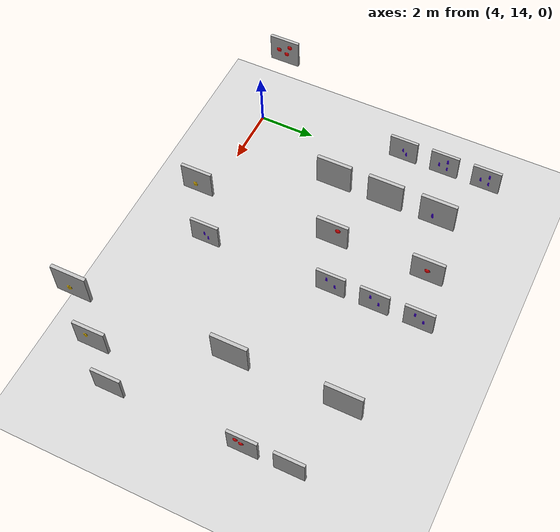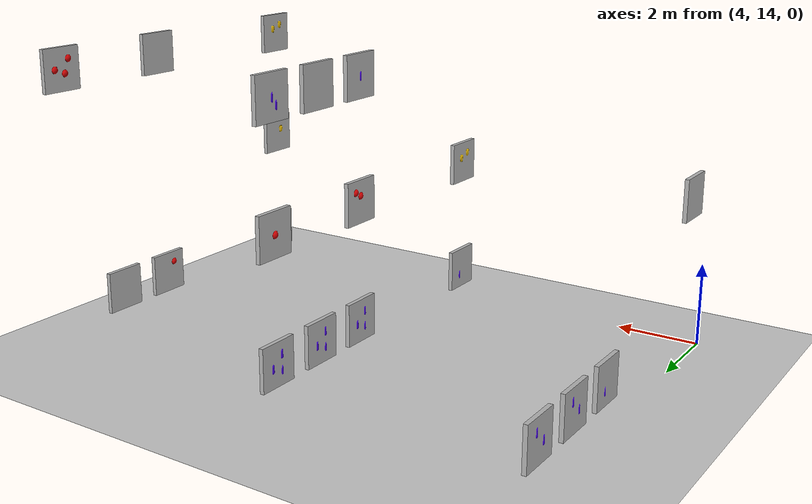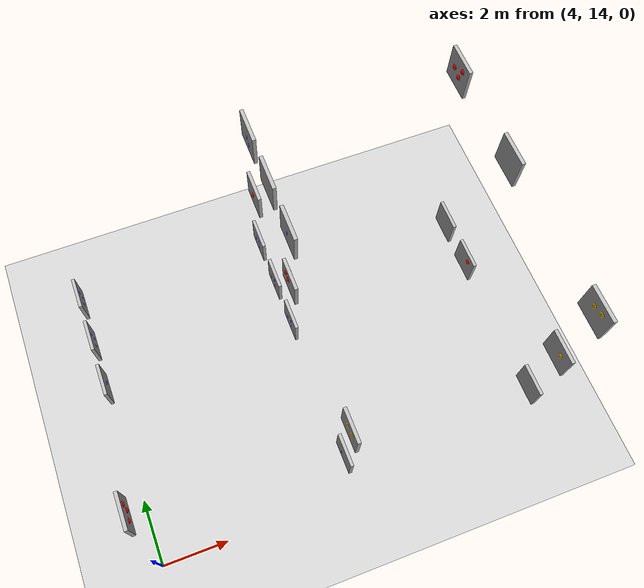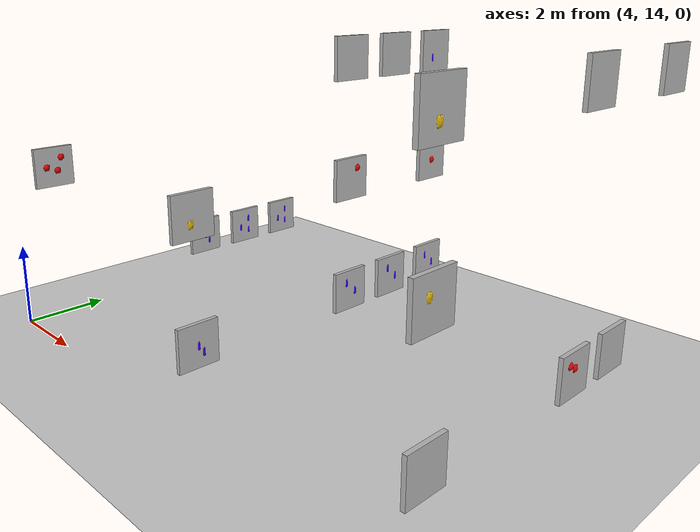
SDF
<sdf version="1.7">
 <world name="default">
  <model name="ground_plane">
   <static>1</static>
   <link name="link">
    <collision name="collision">
     <geometry><plane><normal>0 0 1</normal><size>100 100</size></plane></geometry>
     <surface>
      <contact><collide_bitmask>65535</collide_bitmask></contact>
      <friction><ode><mu>100</mu><mu2>50</mu2></ode></friction>
     </surface>
    </collision>
    <visual name="visual">
     <cast_shadows>0</cast_shadows>
     <geometry><plane><normal>0 0 1</normal><size>100 100</size></plane></geometry>
     <material>
      <script><uri>file://media/materials/scripts/gazebo.material</uri><name>Gazebo/Grey</name></script>
     </material>
    </visual>
   </link>
  </model>
  <model name="plant4">
   <link name="tomato_3">
    <inertial>
     <mass>1</mass>
     <inertia><ixx>10</ixx><ixy>0</ixy><ixz>0</ixz><iyy>10</iyy><iyz>0</iyz><izz>10</izz></inertia>
    </inertial>
    <collision name="tomato_3_collision">
     <geometry>
      <mesh><scale>1 1 1</scale><uri>/root/sim_ws/src/icuas24_competition/models/tomato_3/tomato_3.dae</uri></mesh>
     </geometry>
    </collision>
    <visual name="tomato_3_visual">
     <geometry>
      <mesh><scale>1 1 1</scale><uri>/root/sim_ws/src/icuas24_competition/models/tomato_3/tomato_3.dae</uri></mesh>
     </geometry>
    </visual>
   </link>
   <static>1</static>
   <pose>4 15 3.9 0 0 -1.5707</pose>
  </model>
  <model name="plant5">
   <link name="eggplant_4">
    <inertial>
     <mass>1</mass>
     <inertia><ixx>10</ixx><ixy>0</ixy><ixz>0</ixz><iyy>10</iyy><iyz>0</iyz><izz>10</izz></inertia>
    </inertial>
    <collision name="eggplant_4_collision">
     <geometry>
      <mesh>
       <scale>1 1 1</scale>
       <uri>/root/sim_ws/src/icuas24_competition/models/eggplant_4/eggplant_4.dae</uri>
      </mesh>
     </geometry>
    </collision>
    <visual name="eggplant_4_visual">
     <geometry>
      <mesh>
       <scale>1 1 1</scale>
       <uri>/root/sim_ws/src/icuas24_competition/models/eggplant_4/eggplant_4.dae</uri>
      </mesh>
     </geometry>
    </visual>
   </link>
   <static>1</static>
   <pose>10 21 1.1 0 -0 1.5707</pose>
  </model>
  <model name="plant6">
   <link name="eggplant_4">
    <inertial>
     <mass>1</mass>
     <inertia><ixx>10</ixx><ixy>0</ixy><ixz>0</ixz><iyy>10</iyy><iyz>0</iyz><izz>10</izz></inertia>
    </inertial>
    <collision name="eggplant_4_collision">
     <geometry>
      <mesh>
       <scale>1 1 1</scale>
       <uri>/root/sim_ws/src/icuas24_competition/models/eggplant_4/eggplant_4.dae</uri>
      </mesh>
     </geometry>
    </collision>
    <visual name="eggplant_4_visual">
     <geometry>
      <mesh>
       <scale>1 1 1</scale>
       <uri>/root/sim_ws/src/icuas24_competition/models/eggplant_4/eggplant_4.dae</uri>
      </mesh>
     </geometry>
    </visual>
   </link>
   <static>1</static>
   <pose>10 22.5 1.1 0 -0 1.5707</pose>
  </model>
  <model name="plant7">
   <link name="eggplant_4">
    <inertial>
     <mass>1</mass>
     <inertia><ixx>10</ixx><ixy>0</ixy><ixz>0</ixz><iyy>10</iyy><iyz>0</iyz><izz>10</izz></inertia>
    </inertial>
    <collision name="eggplant_4_collision">
     <geometry>
      <mesh>
       <scale>1 1 1</scale>
       <uri>/root/sim_ws/src/icuas24_competition/models/eggplant_4/eggplant_4.dae</uri>
      </mesh>
     </geometry>
    </collision>
    <visual name="eggplant_4_visual">
     <geometry>
      <mesh>
       <scale>1 1 1</scale>
       <uri>/root/sim_ws/src/icuas24_competition/models/eggplant_4/eggplant_4.dae</uri>
      </mesh>
     </geometry>
    </visual>
   </link>
   <static>1</static>
   <pose>10 19.5 1.1 0 -0 1.5707</pose>
  </model>
  <model name="plant8">
   <link name="tomato_1">
    <inertial>
     <mass>1</mass>
     <inertia><ixx>10</ixx><ixy>0</ixy><ixz>0</ixz><iyy>10</iyy><iyz>0</iyz><izz>10</izz></inertia>
    </inertial>
    <collision name="tomato_1_collision">
     <geometry>
      <mesh><scale>1 1 1</scale><uri>/root/sim_ws/src/icuas24_competition/models/tomato_1/tomato_1.dae</uri></mesh>
     </geometry>
    </collision>
    <visual name="tomato_1_visual">
     <geometry>
      <mesh><scale>1 1 1</scale><uri>/root/sim_ws/src/icuas24_competition/models/tomato_1/tomato_1.dae</uri></mesh>
     </geometry>
    </visual>
   </link>
   <static>1</static>
   <pose>10 22.5 3.9 0 0 -1.5707</pose>
  </model>
  <model name="plant9">
   <link name="tomato_2">
    <inertial>
     <mass>1</mass>
     <inertia><ixx>10</ixx><ixy>0</ixy><ixz>0</ixz><iyy>10</iyy><iyz>0</iyz><izz>10</izz></inertia>
    </inertial>
    <collision name="tomato_2_collision">
     <geometry>
      <mesh><scale>1 1 1</scale><uri>/root/sim_ws/src/icuas24_competition/models/tomato_2/tomato_2.dae</uri></mesh>
     </geometry>
    </collision>
    <visual name="tomato_2_visual">
     <geometry>
      <mesh><scale>1 1 1</scale><uri>/root/sim_ws/src/icuas24_competition/models/tomato_2/tomato_2.dae</uri></mesh>
     </geometry>
    </visual>
   </link>
   <static>1</static>
   <pose>10 19.5 3.9 0 -0 1.5707</pose>
  </model>
  <model name="plant12">
   <link name="plant">
    <inertial>
     <mass>1</mass>
     <inertia><ixx>10</ixx><ixy>0</ixy><ixz>0</ixz><iyy>10</iyy><iyz>0</iyz><izz>10</izz></inertia>
    </inertial>
    <collision name="plant_collision">
     <geometry>
      <mesh><scale>1 1 1</scale><uri>/root/sim_ws/src/icuas24_competition/models/plant/plant_base.dae</uri></mesh>
     </geometry>
    </collision>
    <visual name="plant_visual">
     <geometry>
      <mesh><scale>1 1 1</scale><uri>/root/sim_ws/src/icuas24_competition/models/plant/plant_base.dae</uri></mesh>
     </geometry>
    </visual>
   </link>
   <static>1</static>
   <pose>16 15 1.1 0 -0 1.5707</pose>
  </model>
  <model name="plant13">
   <link name="plant">
    <inertial>
     <mass>1</mass>
     <inertia><ixx>10</ixx><ixy>0</ixy><ixz>0</ixz><iyy>10</iyy><iyz>0</iyz><izz>10</izz></inertia>
    </inertial>
    <collision name="plant_collision">
     <geometry>
      <mesh><scale>1 1 1</scale><uri>/root/sim_ws/src/icuas24_competition/models/plant/plant_base.dae</uri></mesh>
     </geometry>
    </collision>
    <visual name="plant_visual">
     <geometry>
      <mesh><scale>1 1 1</scale><uri>/root/sim_ws/src/icuas24_competition/models/plant/plant_base.dae</uri></mesh>
     </geometry>
    </visual>
   </link>
   <static>1</static>
   <pose>16 21 1.1 0 -0 1.5707</pose>
  </model>
  <model name="plant14">
   <link name="tomato_2">
    <inertial>
     <mass>1</mass>
     <inertia><ixx>10</ixx><ixy>0</ixy><ixz>0</ixz><iyy>10</iyy><iyz>0</iyz><izz>10</izz></inertia>
    </inertial>
    <collision name="tomato_2_collision">
     <geometry>
      <mesh><scale>1 1 1</scale><uri>/root/sim_ws/src/icuas24_competition/models/tomato_2/tomato_2.dae</uri></mesh>
     </geometry>
    </collision>
    <visual name="tomato_2_visual">
     <geometry>
      <mesh><scale>1 1 1</scale><uri>/root/sim_ws/src/icuas24_competition/models/tomato_2/tomato_2.dae</uri></mesh>
     </geometry>
    </visual>
   </link>
   <static>1</static>
   <pose>16 19.5 1.1 0 0 -1.5707</pose>
  </model>
  <model name="plant15">
   <link name="plant">
    <inertial>
     <mass>1</mass>
     <inertia><ixx>10</ixx><ixy>0</ixy><ixz>0</ixz><iyy>10</iyy><iyz>0</iyz><izz>10</izz></inertia>
    </inertial>
    <collision name="plant_collision">
     <geometry>
      <mesh><scale>1 1 1</scale><uri>/root/sim_ws/src/icuas24_competition/models/plant/plant_base.dae</uri></mesh>
     </geometry>
    </collision>
    <visual name="plant_visual">
     <geometry>
      <mesh><scale>1 1 1</scale><uri>/root/sim_ws/src/icuas24_competition/models/plant/plant_base.dae</uri></mesh>
     </geometry>
    </visual>
   </link>
   <static>1</static>
   <pose>16 19.5 6.7 0 0 -1.5707</pose>
  </model>
  <model name="plant16">
   <link name="tomato_3">
    <inertial>
     <mass>1</mass>
     <inertia><ixx>10</ixx><ixy>0</ixy><ixz>0</ixz><iyy>10</iyy><iyz>0</iyz><izz>10</izz></inertia>
    </inertial>
    <collision name="tomato_3_collision">
     <geometry>
      <mesh><scale>1 1 1</scale><uri>/root/sim_ws/src/icuas24_competition/models/tomato_3/tomato_3.dae</uri></mesh>
     </geometry>
    </collision>
    <visual name="tomato_3_visual">
     <geometry>
      <mesh><scale>1 1 1</scale><uri>/root/sim_ws/src/icuas24_competition/models/tomato_3/tomato_3.dae</uri></mesh>
     </geometry>
    </visual>
   </link>
   <static>1</static>
   <pose>16 22.5 6.7 0 -0 1.5707</pose>
  </model>
  <model name="plant19">
   <link name="pepper_3">
    <inertial>
     <mass>1</mass>
     <inertia><ixx>10</ixx><ixy>0</ixy><ixz>0</ixz><iyy>10</iyy><iyz>0</iyz><izz>10</izz></inertia>
    </inertial>
    <collision name="pepper_3_collision">
     <geometry>
      <mesh><scale>1 1 1</scale><uri>/root/sim_ws/src/icuas24_competition/models/pepper_3/pepper_3.dae</uri></mesh>
     </geometry>
    </collision>
    <visual name="pepper_3_visual">
     <geometry>
      <mesh><scale>1 1 1</scale><uri>/root/sim_ws/src/icuas24_competition/models/pepper_3/pepper_3.dae</uri></mesh>
     </geometry>
    </visual>
   </link>
   <static>1</static>
   <pose>10 15 3.9 0 -0 1.5707</pose>
  </model>
  <model name="plant24">
   <link name="pepper_1">
    <inertial>
     <mass>1</mass>
     <inertia><ixx>10</ixx><ixy>0</ixy><ixz>0</ixz><iyy>10</iyy><iyz>0</iyz><izz>10</izz></inertia>
    </inertial>
    <collision name="pepper_1_collision">
     <geometry>
      <mesh><scale>1 1 1</scale><uri>/root/sim_ws/src/icuas24_competition/models/pepper_1/pepper_1.dae</uri></mesh>
     </geometry>
    </collision>
    <visual name="pepper_1_visual">
     <geometry>
      <mesh><scale>1 1 1</scale><uri>/root/sim_ws/src/icuas24_competition/models/pepper_1/pepper_1.dae</uri></mesh>
     </geometry>
    </visual>
   </link>
   <static>1</static>
   <pose>16 15 3.9 0 0 -1.5707</pose>
  </model>
  <model name="plant27">
   <link name="pepper_3">
    <inertial>
     <mass>1</mass>
     <inertia><ixx>10</ixx><ixy>0</ixy><ixz>0</ixz><iyy>10</iyy><iyz>0</iyz><izz>10</izz></inertia>
    </inertial>
    <collision name="pepper_3_collision">
     <geometry>
      <mesh><scale>1 1 1</scale><uri>/root/sim_ws/src/icuas24_competition/models/pepper_3/pepper_3.dae</uri></mesh>
     </geometry>
    </collision>
    <visual name="pepper_3_visual">
     <geometry>
      <mesh><scale>1 1 1</scale><uri>/root/sim_ws/src/icuas24_competition/models/pepper_3/pepper_3.dae</uri></mesh>
     </geometry>
    </visual>
   </link>
   <static>1</static>
   <pose>16 15 6.7 0 -0 1.5707</pose>
  </model>
  <model name="plant29">
   <link name="eggplant_2">
    <inertial>
     <mass>1</mass>
     <inertia><ixx>10</ixx><ixy>0</ixy><ixz>0</ixz><iyy>10</iyy><iyz>0</iyz><izz>10</izz></inertia>
    </inertial>
    <collision name="eggplant_2_collision">
     <geometry>
      <mesh>
       <scale>1 1 1</scale>
       <uri>/root/sim_ws/src/icuas24_competition/models/eggplant_2/eggplant_2.dae</uri>
      </mesh>
     </geometry>
    </collision>
    <visual name="eggplant_2_visual">
     <geometry>
      <mesh>
       <scale>1 1 1</scale>
       <uri>/root/sim_ws/src/icuas24_competition/models/eggplant_2/eggplant_2.dae</uri>
      </mesh>
     </geometry>
    </visual>
   </link>
   <static>1</static>
   <pose>4 19.5 1.1 0 0 -1.5707</pose>
  </model>
  <model name="plant30">
   <link name="eggplant_4">
    <inertial>
     <mass>1</mass>
     <inertia><ixx>10</ixx><ixy>0</ixy><ixz>0</ixz><iyy>10</iyy><iyz>0</iyz><izz>10</izz></inertia>
    </inertial>
    <collision name="eggplant_4_collision">
     <geometry>
      <mesh>
       <scale>1 1 1</scale>
       <uri>/root/sim_ws/src/icuas24_competition/models/eggplant_4/eggplant_4.dae</uri>
      </mesh>
     </geometry>
    </collision>
    <visual name="eggplant_4_visual">
     <geometry>
      <mesh>
       <scale>1 1 1</scale>
       <uri>/root/sim_ws/src/icuas24_competition/models/eggplant_4/eggplant_4.dae</uri>
      </mesh>
     </geometry>
    </visual>
   </link>
   <static>1</static>
   <pose>4 22.5 1.1 0 0 -1.5707</pose>
  </model>
  <model name="plant31">
   <link name="eggplant_4">
    <inertial>
     <mass>1</mass>
     <inertia><ixx>10</ixx><ixy>0</ixy><ixz>0</ixz><iyy>10</iyy><iyz>0</iyz><izz>10</izz></inertia>
    </inertial>
    <collision name="eggplant_4_collision">
     <geometry>
      <mesh>
       <scale>1 1 1</scale>
       <uri>/root/sim_ws/src/icuas24_competition/models/eggplant_4/eggplant_4.dae</uri>
      </mesh>
     </geometry>
    </collision>
    <visual name="eggplant_4_visual">
     <geometry>
      <mesh>
       <scale>1 1 1</scale>
       <uri>/root/sim_ws/src/icuas24_competition/models/eggplant_4/eggplant_4.dae</uri>
      </mesh>
     </geometry>
    </visual>
   </link>
   <static>1</static>
   <pose>4 21 1.1 0 0 -1.5707</pose>
  </model>
  <model name="plant34">
   <link name="eggplant_2">
    <inertial>
     <mass>1</mass>
     <inertia><ixx>10</ixx><ixy>0</ixy><ixz>0</ixz><iyy>10</iyy><iyz>0</iyz><izz>10</izz></inertia>
    </inertial>
    <collision name="eggplant_2_collision">
     <geometry>
      <mesh>
       <scale>1 1 1</scale>
       <uri>/root/sim_ws/src/icuas24_competition/models/eggplant_2/eggplant_2.dae</uri>
      </mesh>
     </geometry>
    </collision>
    <visual name="eggplant_2_visual">
     <geometry>
      <mesh>
       <scale>1 1 1</scale>
       <uri>/root/sim_ws/src/icuas24_competition/models/eggplant_2/eggplant_2.dae</uri>
      </mesh>
     </geometry>
    </visual>
   </link>
   <static>1</static>
   <pose>10 15 1.1 0 0 -1.5707</pose>
  </model>
  <model name="plant36">
   <link name="eggplant_1">
    <inertial>
     <mass>1</mass>
     <inertia><ixx>10</ixx><ixy>0</ixy><ixz>0</ixz><iyy>10</iyy><iyz>0</iyz><izz>10</izz></inertia>
    </inertial>
    <collision name="eggplant_1_collision">
     <geometry>
      <mesh>
       <scale>1 1 1</scale>
       <uri>/root/sim_ws/src/icuas24_competition/models/eggplant_1/eggplant_1.dae</uri>
      </mesh>
     </geometry>
    </collision>
    <visual name="eggplant_1_visual">
     <geometry>
      <mesh>
       <scale>1 1 1</scale>
       <uri>/root/sim_ws/src/icuas24_competition/models/eggplant_1/eggplant_1.dae</uri>
      </mesh>
     </geometry>
    </visual>
   </link>
   <static>1</static>
   <pose>10 19.5 6.7 0 -0 1.5707</pose>
  </model>
  <model name="plant37">
   <link name="eggplant_2">
    <inertial>
     <mass>1</mass>
     <inertia><ixx>10</ixx><ixy>0</ixy><ixz>0</ixz><iyy>10</iyy><iyz>0</iyz><izz>10</izz></inertia>
    </inertial>
    <collision name="eggplant_2_collision">
     <geometry>
      <mesh>
       <scale>1 1 1</scale>
       <uri>/root/sim_ws/src/icuas24_competition/models/eggplant_2/eggplant_2.dae</uri>
      </mesh>
     </geometry>
    </collision>
    <visual name="eggplant_2_visual">
     <geometry>
      <mesh>
       <scale>1 1 1</scale>
       <uri>/root/sim_ws/src/icuas24_competition/models/eggplant_2/eggplant_2.dae</uri>
      </mesh>
     </geometry>
    </visual>
   </link>
   <static>1</static>
   <pose>10 22.5 6.7 0 -0 1.5707</pose>
  </model>
  <model name="plant38">
   <link name="plant">
    <inertial>
     <mass>1</mass>
     <inertia><ixx>10</ixx><ixy>0</ixy><ixz>0</ixz><iyy>10</iyy><iyz>0</iyz><izz>10</izz></inertia>
    </inertial>
    <collision name="plant_collision">
     <geometry>
      <mesh><scale>1 1 1</scale><uri>/root/sim_ws/src/icuas24_competition/models/plant/plant_base.dae</uri></mesh>
     </geometry>
    </collision>
    <visual name="plant_visual">
     <geometry>
      <mesh><scale>1 1 1</scale><uri>/root/sim_ws/src/icuas24_competition/models/plant/plant_base.dae</uri></mesh>
     </geometry>
    </visual>
   </link>
   <static>1</static>
   <pose>10 21 6.7 0 -0 1.5707</pose>
  </model>
 </world>
</sdf>
